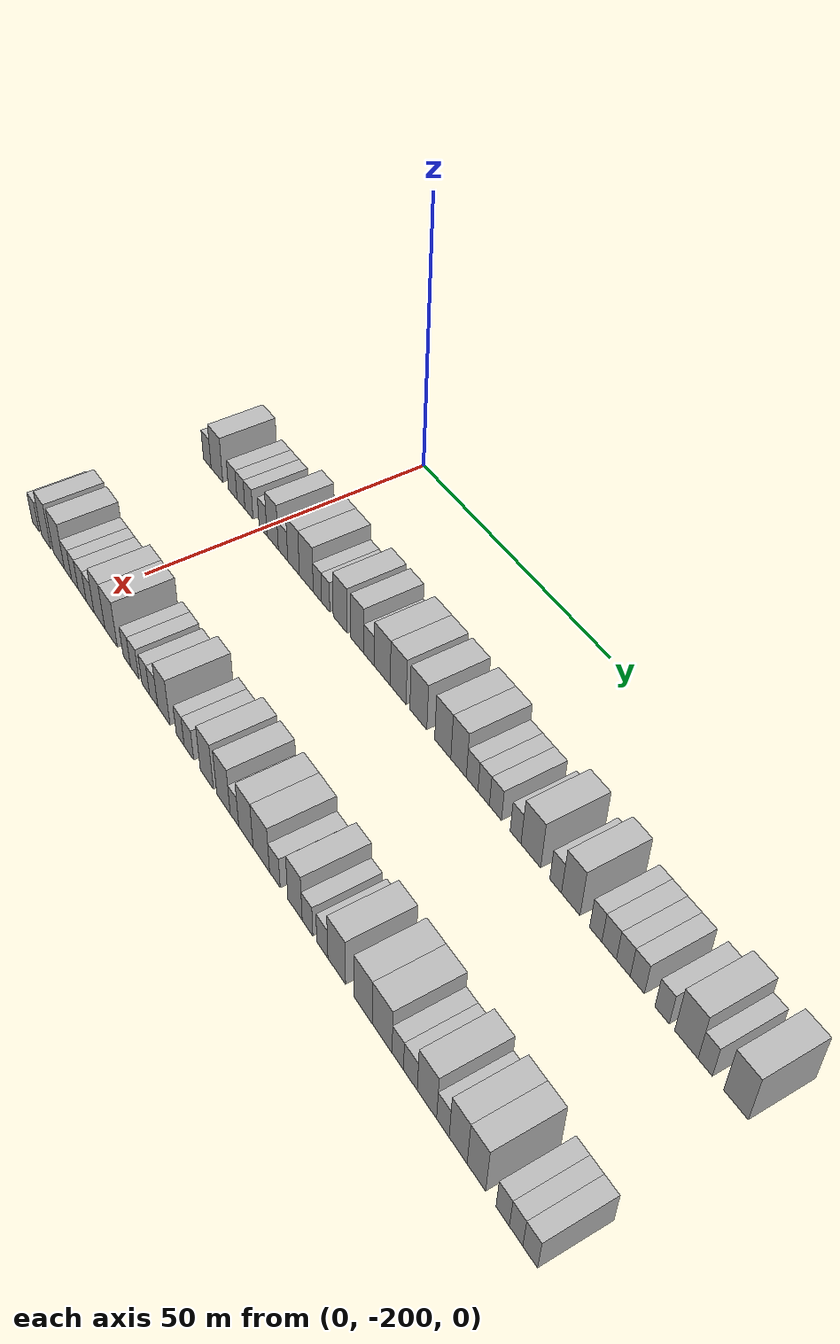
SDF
<sdf version="1.6">
 <world name="default">
  <model name="building_1">
   <static>1</static>
   <pose>25.0000 -218.6373 0 0.000000 0.000000 0.000000</pose>
   <link name="link">
    <pose>0 0 3.00 0 0 0</pose>
    <collision name="collision"><geometry><box><size>10.0000 2.7254 6.0000</size></box></geometry></collision>
    <visual name="visual">
     <cast_shadows>0</cast_shadows>
     <geometry><box><size>10.0000 2.7254 6.0000</size></box></geometry>
     <material>
      <script>
       <uri>model://HANNAS_wall/materials/scripts</uri>
       <uri>model://HANNAS_wall/materials/textures</uri>
       <name>vrc/HANNAS_wall</name>
      </script>
     </material>
    </visual>
   </link>
  </model>
  <model name="building_2">
   <static>1</static>
   <pose>25.0000 -215.2229 0 0.000000 0.000000 0.000000</pose>
   <link name="link">
    <pose>0 0 4.50 0 0 0</pose>
    <collision name="collision"><geometry><box><size>10.0000 4.1034 9.0000</size></box></geometry></collision>
    <visual name="visual">
     <cast_shadows>0</cast_shadows>
     <geometry><box><size>10.0000 4.1034 9.0000</size></box></geometry>
     <material>
      <script>
       <uri>model://HANNAS_wall/materials/scripts</uri>
       <uri>model://HANNAS_wall/materials/textures</uri>
       <name>vrc/HANNAS_wall</name>
      </script>
     </material>
    </visual>
   </link>
  </model>
  <model name="building_3">
   <static>1</static>
   <pose>25.0000 -209.6990 0 0.000000 0.000000 0.000000</pose>
   <link name="link">
    <pose>0 0 3.00 0 0 0</pose>
    <collision name="collision"><geometry><box><size>10.0000 2.9444 6.0000</size></box></geometry></collision>
    <visual name="visual">
     <cast_shadows>0</cast_shadows>
     <geometry><box><size>10.0000 2.9444 6.0000</size></box></geometry>
     <material>
      <script>
       <uri>model://HANNAS_wall/materials/scripts</uri>
       <uri>model://HANNAS_wall/materials/textures</uri>
       <name>vrc/HANNAS_wall</name>
      </script>
     </material>
    </visual>
   </link>
  </model>
  <model name="building_4">
   <static>1</static>
   <pose>25.0000 -206.8797 0 0.000000 0.000000 0.000000</pose>
   <link name="link">
    <pose>0 0 3.00 0 0 0</pose>
    <collision name="collision"><geometry><box><size>10.0000 2.6942 6.0000</size></box></geometry></collision>
    <visual name="visual">
     <cast_shadows>0</cast_shadows>
     <geometry><box><size>10.0000 2.6942 6.0000</size></box></geometry>
     <material>
      <script>
       <uri>model://HANNAS_wall/materials/scripts</uri>
       <uri>model://HANNAS_wall/materials/textures</uri>
       <name>vrc/HANNAS_wall</name>
      </script>
     </material>
    </visual>
   </link>
  </model>
  <model name="building_5">
   <static>1</static>
   <pose>25.0000 -204.1767 0 0.000000 0.000000 0.000000</pose>
   <link name="link">
    <pose>0 0 3.00 0 0 0</pose>
    <collision name="collision"><geometry><box><size>10.0000 2.7119 6.0000</size></box></geometry></collision>
    <visual name="visual">
     <cast_shadows>0</cast_shadows>
     <geometry><box><size>10.0000 2.7119 6.0000</size></box></geometry>
     <material>
      <script>
       <uri>model://HANNAS_wall/materials/scripts</uri>
       <uri>model://HANNAS_wall/materials/textures</uri>
       <name>vrc/HANNAS_wall</name>
      </script>
     </material>
    </visual>
   </link>
  </model>
  <model name="building_6">
   <static>1</static>
   <pose>25.0000 -199.5286 0 0.000000 0.000000 0.000000</pose>
   <link name="link">
    <pose>0 0 3.00 0 0 0</pose>
    <collision name="collision"><geometry><box><size>10.0000 2.5842 6.0000</size></box></geometry></collision>
    <visual name="visual">
     <cast_shadows>0</cast_shadows>
     <geometry><box><size>10.0000 2.5842 6.0000</size></box></geometry>
     <material>
      <script>
       <uri>model://HANNAS_wall/materials/scripts</uri>
       <uri>model://HANNAS_wall/materials/textures</uri>
       <name>vrc/HANNAS_wall</name>
      </script>
     </material>
    </visual>
   </link>
  </model>
  <model name="building_7">
   <static>1</static>
   <pose>25.0000 -196.3921 0 0.000000 0.000000 0.000000</pose>
   <link name="link">
    <pose>0 0 4.50 0 0 0</pose>
    <collision name="collision"><geometry><box><size>10.0000 3.6888 9.0000</size></box></geometry></collision>
    <visual name="visual">
     <cast_shadows>0</cast_shadows>
     <geometry><box><size>10.0000 3.6888 9.0000</size></box></geometry>
     <material>
      <script>
       <uri>model://HANNAS_wall/materials/scripts</uri>
       <uri>model://HANNAS_wall/materials/textures</uri>
       <name>vrc/HANNAS_wall</name>
      </script>
     </material>
    </visual>
   </link>
  </model>
  <model name="building_8">
   <static>1</static>
   <pose>25.0000 -193.0513 0 0.000000 0.000000 0.000000</pose>
   <link name="link">
    <pose>0 0 3.00 0 0 0</pose>
    <collision name="collision"><geometry><box><size>10.0000 2.9928 6.0000</size></box></geometry></collision>
    <visual name="visual">
     <cast_shadows>0</cast_shadows>
     <geometry><box><size>10.0000 2.9928 6.0000</size></box></geometry>
     <material>
      <script>
       <uri>model://HANNAS_wall/materials/scripts</uri>
       <uri>model://HANNAS_wall/materials/textures</uri>
       <name>vrc/HANNAS_wall</name>
      </script>
     </material>
    </visual>
   </link>
  </model>
  <model name="building_9">
   <static>1</static>
   <pose>25.0000 -189.7349 0 0.000000 0.000000 0.000000</pose>
   <link name="link">
    <pose>0 0 4.50 0 0 0</pose>
    <collision name="collision"><geometry><box><size>10.0000 3.6400 9.0000</size></box></geometry></collision>
    <visual name="visual">
     <cast_shadows>0</cast_shadows>
     <geometry><box><size>10.0000 3.6400 9.0000</size></box></geometry>
     <material>
      <script>
       <uri>model://HANNAS_wall/materials/scripts</uri>
       <uri>model://HANNAS_wall/materials/textures</uri>
       <name>vrc/HANNAS_wall</name>
      </script>
     </material>
    </visual>
   </link>
  </model>
  <model name="building_10">
   <static>1</static>
   <pose>25.0000 -185.7812 0 0.000000 0.000000 0.000000</pose>
   <link name="link">
    <pose>0 0 4.50 0 0 0</pose>
    <collision name="collision"><geometry><box><size>10.0000 4.2674 9.0000</size></box></geometry></collision>
    <visual name="visual">
     <cast_shadows>0</cast_shadows>
     <geometry><box><size>10.0000 4.2674 9.0000</size></box></geometry>
     <material>
      <script>
       <uri>model://HANNAS_wall/materials/scripts</uri>
       <uri>model://HANNAS_wall/materials/textures</uri>
       <name>vrc/HANNAS_wall</name>
      </script>
     </material>
    </visual>
   </link>
  </model>
  <model name="building_11">
   <static>1</static>
   <pose>25.0000 -182.3997 0 0.000000 0.000000 0.000000</pose>
   <link name="link">
    <pose>0 0 3.00 0 0 0</pose>
    <collision name="collision"><geometry><box><size>10.0000 2.4958 6.0000</size></box></geometry></collision>
    <visual name="visual">
     <cast_shadows>0</cast_shadows>
     <geometry><box><size>10.0000 2.4958 6.0000</size></box></geometry>
     <material>
      <script>
       <uri>model://HANNAS_wall/materials/scripts</uri>
       <uri>model://HANNAS_wall/materials/textures</uri>
       <name>vrc/HANNAS_wall</name>
      </script>
     </material>
    </visual>
   </link>
  </model>
  <model name="building_12">
   <static>1</static>
   <pose>25.0000 -179.9335 0 0.000000 0.000000 0.000000</pose>
   <link name="link">
    <pose>0 0 3.00 0 0 0</pose>
    <collision name="collision"><geometry><box><size>10.0000 2.4366 6.0000</size></box></geometry></collision>
    <visual name="visual">
     <cast_shadows>0</cast_shadows>
     <geometry><box><size>10.0000 2.4366 6.0000</size></box></geometry>
     <material>
      <script>
       <uri>model://HANNAS_wall/materials/scripts</uri>
       <uri>model://HANNAS_wall/materials/textures</uri>
       <name>vrc/HANNAS_wall</name>
      </script>
     </material>
    </visual>
   </link>
  </model>
  <model name="building_13">
   <static>1</static>
   <pose>25.0000 -175.6765 0 0.000000 0.000000 0.000000</pose>
   <link name="link">
    <pose>0 0 4.50 0 0 0</pose>
    <collision name="collision"><geometry><box><size>10.0000 4.0773 9.0000</size></box></geometry></collision>
    <visual name="visual">
     <cast_shadows>0</cast_shadows>
     <geometry><box><size>10.0000 4.0773 9.0000</size></box></geometry>
     <material>
      <script>
       <uri>model://HANNAS_wall/materials/scripts</uri>
       <uri>model://HANNAS_wall/materials/textures</uri>
       <name>vrc/HANNAS_wall</name>
      </script>
     </material>
    </visual>
   </link>
  </model>
  <model name="building_14">
   <static>1</static>
   <pose>25.0000 -170.7742 0 0.000000 0.000000 0.000000</pose>
   <link name="link">
    <pose>0 0 4.50 0 0 0</pose>
    <collision name="collision"><geometry><box><size>10.0000 3.7273 9.0000</size></box></geometry></collision>
    <visual name="visual">
     <cast_shadows>0</cast_shadows>
     <geometry><box><size>10.0000 3.7273 9.0000</size></box></geometry>
     <material>
      <script>
       <uri>model://HANNAS_wall/materials/scripts</uri>
       <uri>model://HANNAS_wall/materials/textures</uri>
       <name>vrc/HANNAS_wall</name>
      </script>
     </material>
    </visual>
   </link>
  </model>
  <model name="building_15">
   <static>1</static>
   <pose>25.0000 -167.4381 0 0.000000 0.000000 0.000000</pose>
   <link name="link">
    <pose>0 0 3.00 0 0 0</pose>
    <collision name="collision"><geometry><box><size>10.0000 2.9449 6.0000</size></box></geometry></collision>
    <visual name="visual">
     <cast_shadows>0</cast_shadows>
     <geometry><box><size>10.0000 2.9449 6.0000</size></box></geometry>
     <material>
      <script>
       <uri>model://HANNAS_wall/materials/scripts</uri>
       <uri>model://HANNAS_wall/materials/textures</uri>
       <name>vrc/HANNAS_wall</name>
      </script>
     </material>
    </visual>
   </link>
  </model>
  <model name="building_16">
   <static>1</static>
   <pose>25.0000 -163.7982 0 0.000000 0.000000 0.000000</pose>
   <link name="link">
    <pose>0 0 4.50 0 0 0</pose>
    <collision name="collision"><geometry><box><size>10.0000 4.3349 9.0000</size></box></geometry></collision>
    <visual name="visual">
     <cast_shadows>0</cast_shadows>
     <geometry><box><size>10.0000 4.3349 9.0000</size></box></geometry>
     <material>
      <script>
       <uri>model://HANNAS_wall/materials/scripts</uri>
       <uri>model://HANNAS_wall/materials/textures</uri>
       <name>vrc/HANNAS_wall</name>
      </script>
     </material>
    </visual>
   </link>
  </model>
  <model name="building_17">
   <static>1</static>
   <pose>25.0000 -159.5141 0 0.000000 0.000000 0.000000</pose>
   <link name="link">
    <pose>0 0 4.50 0 0 0</pose>
    <collision name="collision"><geometry><box><size>10.0000 4.2334 9.0000</size></box></geometry></collision>
    <visual name="visual">
     <cast_shadows>0</cast_shadows>
     <geometry><box><size>10.0000 4.2334 9.0000</size></box></geometry>
     <material>
      <script>
       <uri>model://HANNAS_wall/materials/scripts</uri>
       <uri>model://HANNAS_wall/materials/textures</uri>
       <name>vrc/HANNAS_wall</name>
      </script>
     </material>
    </visual>
   </link>
  </model>
  <model name="building_18">
   <static>1</static>
   <pose>25.0000 -154.1911 0 0.000000 0.000000 0.000000</pose>
   <link name="link">
    <pose>0 0 4.50 0 0 0</pose>
    <collision name="collision"><geometry><box><size>10.0000 4.4124 9.0000</size></box></geometry></collision>
    <visual name="visual">
     <cast_shadows>0</cast_shadows>
     <geometry><box><size>10.0000 4.4124 9.0000</size></box></geometry>
     <material>
      <script>
       <uri>model://HANNAS_wall/materials/scripts</uri>
       <uri>model://HANNAS_wall/materials/textures</uri>
       <name>vrc/HANNAS_wall</name>
      </script>
     </material>
    </visual>
   </link>
  </model>
  <model name="building_19">
   <static>1</static>
   <pose>25.0000 -147.9562 0 0.000000 0.000000 0.000000</pose>
   <link name="link">
    <pose>0 0 4.50 0 0 0</pose>
    <collision name="collision"><geometry><box><size>10.0000 4.0575 9.0000</size></box></geometry></collision>
    <visual name="visual">
     <cast_shadows>0</cast_shadows>
     <geometry><box><size>10.0000 4.0575 9.0000</size></box></geometry>
     <material>
      <script>
       <uri>model://HANNAS_wall/materials/scripts</uri>
       <uri>model://HANNAS_wall/materials/textures</uri>
       <name>vrc/HANNAS_wall</name>
      </script>
     </material>
    </visual>
   </link>
  </model>
  <model name="building_20">
   <static>1</static>
   <pose>25.0000 -144.0206 0 0.000000 0.000000 0.000000</pose>
   <link name="link">
    <pose>0 0 4.50 0 0 0</pose>
    <collision name="collision"><geometry><box><size>10.0000 3.8136 9.0000</size></box></geometry></collision>
    <visual name="visual">
     <cast_shadows>0</cast_shadows>
     <geometry><box><size>10.0000 3.8136 9.0000</size></box></geometry>
     <material>
      <script>
       <uri>model://HANNAS_wall/materials/scripts</uri>
       <uri>model://HANNAS_wall/materials/textures</uri>
       <name>vrc/HANNAS_wall</name>
      </script>
     </material>
    </visual>
   </link>
  </model>
  <model name="building_21">
   <static>1</static>
   <pose>25.0000 -140.7175 0 0.000000 0.000000 0.000000</pose>
   <link name="link">
    <pose>0 0 3.00 0 0 0</pose>
    <collision name="collision"><geometry><box><size>10.0000 2.7927 6.0000</size></box></geometry></collision>
    <visual name="visual">
     <cast_shadows>0</cast_shadows>
     <geometry><box><size>10.0000 2.7927 6.0000</size></box></geometry>
     <material>
      <script>
       <uri>model://HANNAS_wall/materials/scripts</uri>
       <uri>model://HANNAS_wall/materials/textures</uri>
       <name>vrc/HANNAS_wall</name>
      </script>
     </material>
    </visual>
   </link>
  </model>
  <model name="building_22">
   <static>1</static>
   <pose>25.0000 -137.9594 0 0.000000 0.000000 0.000000</pose>
   <link name="link">
    <pose>0 0 3.00 0 0 0</pose>
    <collision name="collision"><geometry><box><size>10.0000 2.7236 6.0000</size></box></geometry></collision>
    <visual name="visual">
     <cast_shadows>0</cast_shadows>
     <geometry><box><size>10.0000 2.7236 6.0000</size></box></geometry>
     <material>
      <script>
       <uri>model://HANNAS_wall/materials/scripts</uri>
       <uri>model://HANNAS_wall/materials/textures</uri>
       <name>vrc/HANNAS_wall</name>
      </script>
     </material>
    </visual>
   </link>
  </model>
  <model name="building_23">
   <static>1</static>
   <pose>25.0000 -135.1824 0 0.000000 0.000000 0.000000</pose>
   <link name="link">
    <pose>0 0 3.00 0 0 0</pose>
    <collision name="collision"><geometry><box><size>10.0000 2.8303 6.0000</size></box></geometry></collision>
    <visual name="visual">
     <cast_shadows>0</cast_shadows>
     <geometry><box><size>10.0000 2.8303 6.0000</size></box></geometry>
     <material>
      <script>
       <uri>model://HANNAS_wall/materials/scripts</uri>
       <uri>model://HANNAS_wall/materials/textures</uri>
       <name>vrc/HANNAS_wall</name>
      </script>
     </material>
    </visual>
   </link>
  </model>
  <model name="building_24">
   <static>1</static>
   <pose>25.0000 -130.5386 0 0.000000 0.000000 0.000000</pose>
   <link name="link">
    <pose>0 0 3.00 0 0 0</pose>
    <collision name="collision"><geometry><box><size>10.0000 2.4573 6.0000</size></box></geometry></collision>
    <visual name="visual">
     <cast_shadows>0</cast_shadows>
     <geometry><box><size>10.0000 2.4573 6.0000</size></box></geometry>
     <material>
      <script>
       <uri>model://HANNAS_wall/materials/scripts</uri>
       <uri>model://HANNAS_wall/materials/textures</uri>
       <name>vrc/HANNAS_wall</name>
      </script>
     </material>
    </visual>
   </link>
  </model>
  <model name="building_25">
   <static>1</static>
   <pose>25.0000 -127.1164 0 0.000000 0.000000 0.000000</pose>
   <link name="link">
    <pose>0 0 4.50 0 0 0</pose>
    <collision name="collision"><geometry><box><size>10.0000 4.3872 9.0000</size></box></geometry></collision>
    <visual name="visual">
     <cast_shadows>0</cast_shadows>
     <geometry><box><size>10.0000 4.3872 9.0000</size></box></geometry>
     <material>
      <script>
       <uri>model://HANNAS_wall/materials/scripts</uri>
       <uri>model://HANNAS_wall/materials/textures</uri>
       <name>vrc/HANNAS_wall</name>
      </script>
     </material>
    </visual>
   </link>
  </model>
  <model name="building_26">
   <static>1</static>
   <pose>25.0000 -121.6655 0 0.000000 0.000000 0.000000</pose>
   <link name="link">
    <pose>0 0 3.00 0 0 0</pose>
    <collision name="collision"><geometry><box><size>10.0000 2.5145 6.0000</size></box></geometry></collision>
    <visual name="visual">
     <cast_shadows>0</cast_shadows>
     <geometry><box><size>10.0000 2.5145 6.0000</size></box></geometry>
     <material>
      <script>
       <uri>model://HANNAS_wall/materials/scripts</uri>
       <uri>model://HANNAS_wall/materials/textures</uri>
       <name>vrc/HANNAS_wall</name>
      </script>
     </material>
    </visual>
   </link>
  </model>
  <model name="building_27">
   <static>1</static>
   <pose>25.0000 -118.4431 0 0.000000 0.000000 0.000000</pose>
   <link name="link">
    <pose>0 0 4.50 0 0 0</pose>
    <collision name="collision"><geometry><box><size>10.0000 3.9304 9.0000</size></box></geometry></collision>
    <visual name="visual">
     <cast_shadows>0</cast_shadows>
     <geometry><box><size>10.0000 3.9304 9.0000</size></box></geometry>
     <material>
      <script>
       <uri>model://HANNAS_wall/materials/scripts</uri>
       <uri>model://HANNAS_wall/materials/textures</uri>
       <name>vrc/HANNAS_wall</name>
      </script>
     </material>
    </visual>
   </link>
  </model>
  <model name="building_28">
   <static>1</static>
   <pose>25.0000 -113.2305 0 0.000000 0.000000 0.000000</pose>
   <link name="link">
    <pose>0 0 3.00 0 0 0</pose>
    <collision name="collision"><geometry><box><size>10.0000 2.4947 6.0000</size></box></geometry></collision>
    <visual name="visual">
     <cast_shadows>0</cast_shadows>
     <geometry><box><size>10.0000 2.4947 6.0000</size></box></geometry>
     <material>
      <script>
       <uri>model://HANNAS_wall/materials/scripts</uri>
       <uri>model://HANNAS_wall/materials/textures</uri>
       <name>vrc/HANNAS_wall</name>
      </script>
     </material>
    </visual>
   </link>
  </model>
  <model name="building_29">
   <static>1</static>
   <pose>25.0000 -110.5142 0 0.000000 0.000000 0.000000</pose>
   <link name="link">
    <pose>0 0 3.00 0 0 0</pose>
    <collision name="collision"><geometry><box><size>10.0000 2.9378 6.0000</size></box></geometry></collision>
    <visual name="visual">
     <cast_shadows>0</cast_shadows>
     <geometry><box><size>10.0000 2.9378 6.0000</size></box></geometry>
     <material>
      <script>
       <uri>model://HANNAS_wall/materials/scripts</uri>
       <uri>model://HANNAS_wall/materials/textures</uri>
       <name>vrc/HANNAS_wall</name>
      </script>
     </material>
    </visual>
   </link>
  </model>
  <model name="building_30">
   <static>1</static>
   <pose>25.0000 -107.6728 0 0.000000 0.000000 0.000000</pose>
   <link name="link">
    <pose>0 0 3.00 0 0 0</pose>
    <collision name="collision"><geometry><box><size>10.0000 2.7450 6.0000</size></box></geometry></collision>
    <visual name="visual">
     <cast_shadows>0</cast_shadows>
     <geometry><box><size>10.0000 2.7450 6.0000</size></box></geometry>
     <material>
      <script>
       <uri>model://HANNAS_wall/materials/scripts</uri>
       <uri>model://HANNAS_wall/materials/textures</uri>
       <name>vrc/HANNAS_wall</name>
      </script>
     </material>
    </visual>
   </link>
  </model>
  <model name="building_31">
   <static>1</static>
   <pose>25.0000 -104.9131 0 0.000000 0.000000 0.000000</pose>
   <link name="link">
    <pose>0 0 3.00 0 0 0</pose>
    <collision name="collision"><geometry><box><size>10.0000 2.7745 6.0000</size></box></geometry></collision>
    <visual name="visual">
     <cast_shadows>0</cast_shadows>
     <geometry><box><size>10.0000 2.7745 6.0000</size></box></geometry>
     <material>
      <script>
       <uri>model://HANNAS_wall/materials/scripts</uri>
       <uri>model://HANNAS_wall/materials/textures</uri>
       <name>vrc/HANNAS_wall</name>
      </script>
     </material>
    </visual>
   </link>
  </model>
  <model name="building_32">
   <static>1</static>
   <pose>25.0000 -100.1636 0 0.000000 0.000000 0.000000</pose>
   <link name="link">
    <pose>0 0 3.00 0 0 0</pose>
    <collision name="collision"><geometry><box><size>10.0000 2.7245 6.0000</size></box></geometry></collision>
    <visual name="visual">
     <cast_shadows>0</cast_shadows>
     <geometry><box><size>10.0000 2.7245 6.0000</size></box></geometry>
     <material>
      <script>
       <uri>model://HANNAS_wall/materials/scripts</uri>
       <uri>model://HANNAS_wall/materials/textures</uri>
       <name>vrc/HANNAS_wall</name>
      </script>
     </material>
    </visual>
   </link>
  </model>
  <model name="building_33">
   <static>1</static>
   <pose>25.0000 -95.6585 0 0.000000 0.000000 0.000000</pose>
   <link name="link">
    <pose>0 0 4.50 0 0 0</pose>
    <collision name="collision"><geometry><box><size>10.0000 4.2858 9.0000</size></box></geometry></collision>
    <visual name="visual">
     <cast_shadows>0</cast_shadows>
     <geometry><box><size>10.0000 4.2858 9.0000</size></box></geometry>
     <material>
      <script>
       <uri>model://HANNAS_wall/materials/scripts</uri>
       <uri>model://HANNAS_wall/materials/textures</uri>
       <name>vrc/HANNAS_wall</name>
      </script>
     </material>
    </visual>
   </link>
  </model>
  <model name="building_34">
   <static>1</static>
   <pose>25.0000 -92.2203 0 0.000000 0.000000 0.000000</pose>
   <link name="link">
    <pose>0 0 3.00 0 0 0</pose>
    <collision name="collision"><geometry><box><size>10.0000 2.5905 6.0000</size></box></geometry></collision>
    <visual name="visual">
     <cast_shadows>0</cast_shadows>
     <geometry><box><size>10.0000 2.5905 6.0000</size></box></geometry>
     <material>
      <script>
       <uri>model://HANNAS_wall/materials/scripts</uri>
       <uri>model://HANNAS_wall/materials/textures</uri>
       <name>vrc/HANNAS_wall</name>
      </script>
     </material>
    </visual>
   </link>
  </model>
  <model name="building_35">
   <static>1</static>
   <pose>25.0000 -86.7971 0 0.000000 0.000000 0.000000</pose>
   <link name="link">
    <pose>0 0 4.50 0 0 0</pose>
    <collision name="collision"><geometry><box><size>10.0000 4.2560 9.0000</size></box></geometry></collision>
    <visual name="visual">
     <cast_shadows>0</cast_shadows>
     <geometry><box><size>10.0000 4.2560 9.0000</size></box></geometry>
     <material>
      <script>
       <uri>model://HANNAS_wall/materials/scripts</uri>
       <uri>model://HANNAS_wall/materials/textures</uri>
       <name>vrc/HANNAS_wall</name>
      </script>
     </material>
    </visual>
   </link>
  </model>
  <model name="building_105">
   <static>1</static>
   <pose>55.0000 -218.6425 0 0.000000 0.000000 0.000000</pose>
   <link name="link">
    <pose>0 0 3.00 0 0 0</pose>
    <collision name="collision"><geometry><box><size>10.0000 2.7149 6.0000</size></box></geometry></collision>
    <visual name="visual">
     <cast_shadows>0</cast_shadows>
     <geometry><box><size>10.0000 2.7149 6.0000</size></box></geometry>
     <material>
      <script>
       <uri>model://HANNAS_wall/materials/scripts</uri>
       <uri>model://HANNAS_wall/materials/textures</uri>
       <name>vrc/HANNAS_wall</name>
      </script>
     </material>
    </visual>
   </link>
  </model>
  <model name="building_106">
   <static>1</static>
   <pose>55.0000 -214.4703 0 0.000000 0.000000 0.000000</pose>
   <link name="link">
    <pose>0 0 4.50 0 0 0</pose>
    <collision name="collision"><geometry><box><size>10.0000 3.6296 9.0000</size></box></geometry></collision>
    <visual name="visual">
     <cast_shadows>0</cast_shadows>
     <geometry><box><size>10.0000 3.6296 9.0000</size></box></geometry>
     <material>
      <script>
       <uri>model://HANNAS_wall/materials/scripts</uri>
       <uri>model://HANNAS_wall/materials/textures</uri>
       <name>vrc/HANNAS_wall</name>
      </script>
     </material>
    </visual>
   </link>
  </model>
  <model name="building_107">
   <static>1</static>
   <pose>55.0000 -209.5375 0 0.000000 0.000000 0.000000</pose>
   <link name="link">
    <pose>0 0 4.50 0 0 0</pose>
    <collision name="collision"><geometry><box><size>10.0000 4.2360 9.0000</size></box></geometry></collision>
    <visual name="visual">
     <cast_shadows>0</cast_shadows>
     <geometry><box><size>10.0000 4.2360 9.0000</size></box></geometry>
     <material>
      <script>
       <uri>model://HANNAS_wall/materials/scripts</uri>
       <uri>model://HANNAS_wall/materials/textures</uri>
       <name>vrc/HANNAS_wall</name>
      </script>
     </material>
    </visual>
   </link>
  </model>
  <model name="building_108">
   <static>1</static>
   <pose>55.0000 -206.0520 0 0.000000 0.000000 0.000000</pose>
   <link name="link">
    <pose>0 0 3.00 0 0 0</pose>
    <collision name="collision"><geometry><box><size>10.0000 2.7350 6.0000</size></box></geometry></collision>
    <visual name="visual">
     <cast_shadows>0</cast_shadows>
     <geometry><box><size>10.0000 2.7350 6.0000</size></box></geometry>
     <material>
      <script>
       <uri>model://HANNAS_wall/materials/scripts</uri>
       <uri>model://HANNAS_wall/materials/textures</uri>
       <name>vrc/HANNAS_wall</name>
      </script>
     </material>
    </visual>
   </link>
  </model>
  <model name="building_109">
   <static>1</static>
   <pose>55.0000 -203.4669 0 0.000000 0.000000 0.000000</pose>
   <link name="link">
    <pose>0 0 3.00 0 0 0</pose>
    <collision name="collision"><geometry><box><size>10.0000 2.4352 6.0000</size></box></geometry></collision>
    <visual name="visual">
     <cast_shadows>0</cast_shadows>
     <geometry><box><size>10.0000 2.4352 6.0000</size></box></geometry>
     <material>
      <script>
       <uri>model://HANNAS_wall/materials/scripts</uri>
       <uri>model://HANNAS_wall/materials/textures</uri>
       <name>vrc/HANNAS_wall</name>
      </script>
     </material>
    </visual>
   </link>
  </model>
  <model name="building_110">
   <static>1</static>
   <pose>55.0000 -200.7669 0 0.000000 0.000000 0.000000</pose>
   <link name="link">
    <pose>0 0 3.00 0 0 0</pose>
    <collision name="collision"><geometry><box><size>10.0000 2.9647 6.0000</size></box></geometry></collision>
    <visual name="visual">
     <cast_shadows>0</cast_shadows>
     <geometry><box><size>10.0000 2.9647 6.0000</size></box></geometry>
     <material>
      <script>
       <uri>model://HANNAS_wall/materials/scripts</uri>
       <uri>model://HANNAS_wall/materials/textures</uri>
       <name>vrc/HANNAS_wall</name>
      </script>
     </material>
    </visual>
   </link>
  </model>
  <model name="building_111">
   <static>1</static>
   <pose>55.0000 -197.8575 0 0.000000 0.000000 0.000000</pose>
   <link name="link">
    <pose>0 0 3.00 0 0 0</pose>
    <collision name="collision"><geometry><box><size>10.0000 2.8541 6.0000</size></box></geometry></collision>
    <visual name="visual">
     <cast_shadows>0</cast_shadows>
     <geometry><box><size>10.0000 2.8541 6.0000</size></box></geometry>
     <material>
      <script>
       <uri>model://HANNAS_wall/materials/scripts</uri>
       <uri>model://HANNAS_wall/materials/textures</uri>
       <name>vrc/HANNAS_wall</name>
      </script>
     </material>
    </visual>
   </link>
  </model>
  <model name="building_112">
   <static>1</static>
   <pose>55.0000 -194.5012 0 0.000000 0.000000 0.000000</pose>
   <link name="link">
    <pose>0 0 4.50 0 0 0</pose>
    <collision name="collision"><geometry><box><size>10.0000 3.8585 9.0000</size></box></geometry></collision>
    <visual name="visual">
     <cast_shadows>0</cast_shadows>
     <geometry><box><size>10.0000 3.8585 9.0000</size></box></geometry>
     <material>
      <script>
       <uri>model://HANNAS_wall/materials/scripts</uri>
       <uri>model://HANNAS_wall/materials/textures</uri>
       <name>vrc/HANNAS_wall</name>
      </script>
     </material>
    </visual>
   </link>
  </model>
  <model name="building_113">
   <static>1</static>
   <pose>55.0000 -190.3892 0 0.000000 0.000000 0.000000</pose>
   <link name="link">
    <pose>0 0 4.50 0 0 0</pose>
    <collision name="collision"><geometry><box><size>10.0000 4.3655 9.0000</size></box></geometry></collision>
    <visual name="visual">
     <cast_shadows>0</cast_shadows>
     <geometry><box><size>10.0000 4.3655 9.0000</size></box></geometry>
     <material>
      <script>
       <uri>model://HANNAS_wall/materials/scripts</uri>
       <uri>model://HANNAS_wall/materials/textures</uri>
       <name>vrc/HANNAS_wall</name>
      </script>
     </material>
    </visual>
   </link>
  </model>
  <model name="building_114">
   <static>1</static>
   <pose>55.0000 -184.9822 0 0.000000 0.000000 0.000000</pose>
   <link name="link">
    <pose>0 0 3.00 0 0 0</pose>
    <collision name="collision"><geometry><box><size>10.0000 2.4485 6.0000</size></box></geometry></collision>
    <visual name="visual">
     <cast_shadows>0</cast_shadows>
     <geometry><box><size>10.0000 2.4485 6.0000</size></box></geometry>
     <material>
      <script>
       <uri>model://HANNAS_wall/materials/scripts</uri>
       <uri>model://HANNAS_wall/materials/textures</uri>
       <name>vrc/HANNAS_wall</name>
      </script>
     </material>
    </visual>
   </link>
  </model>
  <model name="building_115">
   <static>1</static>
   <pose>55.0000 -182.3492 0 0.000000 0.000000 0.000000</pose>
   <link name="link">
    <pose>0 0 3.00 0 0 0</pose>
    <collision name="collision"><geometry><box><size>10.0000 2.8175 6.0000</size></box></geometry></collision>
    <visual name="visual">
     <cast_shadows>0</cast_shadows>
     <geometry><box><size>10.0000 2.8175 6.0000</size></box></geometry>
     <material>
      <script>
       <uri>model://HANNAS_wall/materials/scripts</uri>
       <uri>model://HANNAS_wall/materials/textures</uri>
       <name>vrc/HANNAS_wall</name>
      </script>
     </material>
    </visual>
   </link>
  </model>
  <model name="building_116">
   <static>1</static>
   <pose>55.0000 -178.6805 0 0.000000 0.000000 0.000000</pose>
   <link name="link">
    <pose>0 0 3.00 0 0 0</pose>
    <collision name="collision"><geometry><box><size>10.0000 2.5200 6.0000</size></box></geometry></collision>
    <visual name="visual">
     <cast_shadows>0</cast_shadows>
     <geometry><box><size>10.0000 2.5200 6.0000</size></box></geometry>
     <material>
      <script>
       <uri>model://HANNAS_wall/materials/scripts</uri>
       <uri>model://HANNAS_wall/materials/textures</uri>
       <name>vrc/HANNAS_wall</name>
      </script>
     </material>
    </visual>
   </link>
  </model>
  <model name="building_117">
   <static>1</static>
   <pose>55.0000 -176.0759 0 0.000000 0.000000 0.000000</pose>
   <link name="link">
    <pose>0 0 3.00 0 0 0</pose>
    <collision name="collision"><geometry><box><size>10.0000 2.6890 6.0000</size></box></geometry></collision>
    <visual name="visual">
     <cast_shadows>0</cast_shadows>
     <geometry><box><size>10.0000 2.6890 6.0000</size></box></geometry>
     <material>
      <script>
       <uri>model://HANNAS_wall/materials/scripts</uri>
       <uri>model://HANNAS_wall/materials/textures</uri>
       <name>vrc/HANNAS_wall</name>
      </script>
     </material>
    </visual>
   </link>
  </model>
  <model name="building_118">
   <static>1</static>
   <pose>55.0000 -172.8120 0 0.000000 0.000000 0.000000</pose>
   <link name="link">
    <pose>0 0 4.50 0 0 0</pose>
    <collision name="collision"><geometry><box><size>10.0000 3.8389 9.0000</size></box></geometry></collision>
    <visual name="visual">
     <cast_shadows>0</cast_shadows>
     <geometry><box><size>10.0000 3.8389 9.0000</size></box></geometry>
     <material>
      <script>
       <uri>model://HANNAS_wall/materials/scripts</uri>
       <uri>model://HANNAS_wall/materials/textures</uri>
       <name>vrc/HANNAS_wall</name>
      </script>
     </material>
    </visual>
   </link>
  </model>
  <model name="building_119">
   <static>1</static>
   <pose>55.0000 -167.6865 0 0.000000 0.000000 0.000000</pose>
   <link name="link">
    <pose>0 0 3.00 0 0 0</pose>
    <collision name="collision"><geometry><box><size>10.0000 2.4120 6.0000</size></box></geometry></collision>
    <visual name="visual">
     <cast_shadows>0</cast_shadows>
     <geometry><box><size>10.0000 2.4120 6.0000</size></box></geometry>
     <material>
      <script>
       <uri>model://HANNAS_wall/materials/scripts</uri>
       <uri>model://HANNAS_wall/materials/textures</uri>
       <name>vrc/HANNAS_wall</name>
      </script>
     </material>
    </visual>
   </link>
  </model>
  <model name="building_120">
   <static>1</static>
   <pose>55.0000 -165.0368 0 0.000000 0.000000 0.000000</pose>
   <link name="link">
    <pose>0 0 3.00 0 0 0</pose>
    <collision name="collision"><geometry><box><size>10.0000 2.8874 6.0000</size></box></geometry></collision>
    <visual name="visual">
     <cast_shadows>0</cast_shadows>
     <geometry><box><size>10.0000 2.8874 6.0000</size></box></geometry>
     <material>
      <script>
       <uri>model://HANNAS_wall/materials/scripts</uri>
       <uri>model://HANNAS_wall/materials/textures</uri>
       <name>vrc/HANNAS_wall</name>
      </script>
     </material>
    </visual>
   </link>
  </model>
  <model name="building_121">
   <static>1</static>
   <pose>55.0000 -159.6629 0 0.000000 0.000000 0.000000</pose>
   <link name="link">
    <pose>0 0 4.50 0 0 0</pose>
    <collision name="collision"><geometry><box><size>10.0000 3.8603 9.0000</size></box></geometry></collision>
    <visual name="visual">
     <cast_shadows>0</cast_shadows>
     <geometry><box><size>10.0000 3.8603 9.0000</size></box></geometry>
     <material>
      <script>
       <uri>model://HANNAS_wall/materials/scripts</uri>
       <uri>model://HANNAS_wall/materials/textures</uri>
       <name>vrc/HANNAS_wall</name>
      </script>
     </material>
    </visual>
   </link>
  </model>
  <model name="building_122">
   <static>1</static>
   <pose>55.0000 -154.8069 0 0.000000 0.000000 0.000000</pose>
   <link name="link">
    <pose>0 0 4.50 0 0 0</pose>
    <collision name="collision"><geometry><box><size>10.0000 3.8517 9.0000</size></box></geometry></collision>
    <visual name="visual">
     <cast_shadows>0</cast_shadows>
     <geometry><box><size>10.0000 3.8517 9.0000</size></box></geometry>
     <material>
      <script>
       <uri>model://HANNAS_wall/materials/scripts</uri>
       <uri>model://HANNAS_wall/materials/textures</uri>
       <name>vrc/HANNAS_wall</name>
      </script>
     </material>
    </visual>
   </link>
  </model>
  <model name="building_123">
   <static>1</static>
   <pose>55.0000 -151.6798 0 0.000000 0.000000 0.000000</pose>
   <link name="link">
    <pose>0 0 3.00 0 0 0</pose>
    <collision name="collision"><geometry><box><size>10.0000 2.4026 6.0000</size></box></geometry></collision>
    <visual name="visual">
     <cast_shadows>0</cast_shadows>
     <geometry><box><size>10.0000 2.4026 6.0000</size></box></geometry>
     <material>
      <script>
       <uri>model://HANNAS_wall/materials/scripts</uri>
       <uri>model://HANNAS_wall/materials/textures</uri>
       <name>vrc/HANNAS_wall</name>
      </script>
     </material>
    </visual>
   </link>
  </model>
  <model name="building_124">
   <static>1</static>
   <pose>55.0000 -148.4894 0 0.000000 0.000000 0.000000</pose>
   <link name="link">
    <pose>0 0 4.50 0 0 0</pose>
    <collision name="collision"><geometry><box><size>10.0000 3.9782 9.0000</size></box></geometry></collision>
    <visual name="visual">
     <cast_shadows>0</cast_shadows>
     <geometry><box><size>10.0000 3.9782 9.0000</size></box></geometry>
     <material>
      <script>
       <uri>model://HANNAS_wall/materials/scripts</uri>
       <uri>model://HANNAS_wall/materials/textures</uri>
       <name>vrc/HANNAS_wall</name>
      </script>
     </material>
    </visual>
   </link>
  </model>
  <model name="building_125">
   <static>1</static>
   <pose>55.0000 -144.2872 0 0.000000 0.000000 0.000000</pose>
   <link name="link">
    <pose>0 0 4.50 0 0 0</pose>
    <collision name="collision"><geometry><box><size>10.0000 4.4262 9.0000</size></box></geometry></collision>
    <visual name="visual">
     <cast_shadows>0</cast_shadows>
     <geometry><box><size>10.0000 4.4262 9.0000</size></box></geometry>
     <material>
      <script>
       <uri>model://HANNAS_wall/materials/scripts</uri>
       <uri>model://HANNAS_wall/materials/textures</uri>
       <name>vrc/HANNAS_wall</name>
      </script>
     </material>
    </visual>
   </link>
  </model>
  <model name="building_126">
   <static>1</static>
   <pose>55.0000 -140.6618 0 0.000000 0.000000 0.000000</pose>
   <link name="link">
    <pose>0 0 3.00 0 0 0</pose>
    <collision name="collision"><geometry><box><size>10.0000 2.8247 6.0000</size></box></geometry></collision>
    <visual name="visual">
     <cast_shadows>0</cast_shadows>
     <geometry><box><size>10.0000 2.8247 6.0000</size></box></geometry>
     <material>
      <script>
       <uri>model://HANNAS_wall/materials/scripts</uri>
       <uri>model://HANNAS_wall/materials/textures</uri>
       <name>vrc/HANNAS_wall</name>
      </script>
     </material>
    </visual>
   </link>
  </model>
  <model name="building_127">
   <static>1</static>
   <pose>55.0000 -135.4095 0 0.000000 0.000000 0.000000</pose>
   <link name="link">
    <pose>0 0 4.50 0 0 0</pose>
    <collision name="collision"><geometry><box><size>10.0000 3.6800 9.0000</size></box></geometry></collision>
    <visual name="visual">
     <cast_shadows>0</cast_shadows>
     <geometry><box><size>10.0000 3.6800 9.0000</size></box></geometry>
     <material>
      <script>
       <uri>model://HANNAS_wall/materials/scripts</uri>
       <uri>model://HANNAS_wall/materials/textures</uri>
       <name>vrc/HANNAS_wall</name>
      </script>
     </material>
    </visual>
   </link>
  </model>
  <model name="building_128">
   <static>1</static>
   <pose>55.0000 -132.2395 0 0.000000 0.000000 0.000000</pose>
   <link name="link">
    <pose>0 0 3.00 0 0 0</pose>
    <collision name="collision"><geometry><box><size>10.0000 2.6601 6.0000</size></box></geometry></collision>
    <visual name="visual">
     <cast_shadows>0</cast_shadows>
     <geometry><box><size>10.0000 2.6601 6.0000</size></box></geometry>
     <material>
      <script>
       <uri>model://HANNAS_wall/materials/scripts</uri>
       <uri>model://HANNAS_wall/materials/textures</uri>
       <name>vrc/HANNAS_wall</name>
      </script>
     </material>
    </visual>
   </link>
  </model>
  <model name="building_129">
   <static>1</static>
   <pose>55.0000 -128.5564 0 0.000000 0.000000 0.000000</pose>
   <link name="link">
    <pose>0 0 3.00 0 0 0</pose>
    <collision name="collision"><geometry><box><size>10.0000 2.7060 6.0000</size></box></geometry></collision>
    <visual name="visual">
     <cast_shadows>0</cast_shadows>
     <geometry><box><size>10.0000 2.7060 6.0000</size></box></geometry>
     <material>
      <script>
       <uri>model://HANNAS_wall/materials/scripts</uri>
       <uri>model://HANNAS_wall/materials/textures</uri>
       <name>vrc/HANNAS_wall</name>
      </script>
     </material>
    </visual>
   </link>
  </model>
  <model name="building_130">
   <static>1</static>
   <pose>55.0000 -125.0766 0 0.000000 0.000000 0.000000</pose>
   <link name="link">
    <pose>0 0 4.50 0 0 0</pose>
    <collision name="collision"><geometry><box><size>10.0000 4.2535 9.0000</size></box></geometry></collision>
    <visual name="visual">
     <cast_shadows>0</cast_shadows>
     <geometry><box><size>10.0000 4.2535 9.0000</size></box></geometry>
     <material>
      <script>
       <uri>model://HANNAS_wall/materials/scripts</uri>
       <uri>model://HANNAS_wall/materials/textures</uri>
       <name>vrc/HANNAS_wall</name>
      </script>
     </material>
    </visual>
   </link>
  </model>
  <model name="building_131">
   <static>1</static>
   <pose>55.0000 -118.8574 0 0.000000 0.000000 0.000000</pose>
   <link name="link">
    <pose>0 0 4.50 0 0 0</pose>
    <collision name="collision"><geometry><box><size>10.0000 4.1849 9.0000</size></box></geometry></collision>
    <visual name="visual">
     <cast_shadows>0</cast_shadows>
     <geometry><box><size>10.0000 4.1849 9.0000</size></box></geometry>
     <material>
      <script>
       <uri>model://HANNAS_wall/materials/scripts</uri>
       <uri>model://HANNAS_wall/materials/textures</uri>
       <name>vrc/HANNAS_wall</name>
      </script>
     </material>
    </visual>
   </link>
  </model>
  <model name="building_132">
   <static>1</static>
   <pose>55.0000 -114.5314 0 0.000000 0.000000 0.000000</pose>
   <link name="link">
    <pose>0 0 4.50 0 0 0</pose>
    <collision name="collision"><geometry><box><size>10.0000 4.4671 9.0000</size></box></geometry></collision>
    <visual name="visual">
     <cast_shadows>0</cast_shadows>
     <geometry><box><size>10.0000 4.4671 9.0000</size></box></geometry>
     <material>
      <script>
       <uri>model://HANNAS_wall/materials/scripts</uri>
       <uri>model://HANNAS_wall/materials/textures</uri>
       <name>vrc/HANNAS_wall</name>
      </script>
     </material>
    </visual>
   </link>
  </model>
  <model name="building_133">
   <static>1</static>
   <pose>55.0000 -111.0446 0 0.000000 0.000000 0.000000</pose>
   <link name="link">
    <pose>0 0 3.00 0 0 0</pose>
    <collision name="collision"><geometry><box><size>10.0000 2.5065 6.0000</size></box></geometry></collision>
    <visual name="visual">
     <cast_shadows>0</cast_shadows>
     <geometry><box><size>10.0000 2.5065 6.0000</size></box></geometry>
     <material>
      <script>
       <uri>model://HANNAS_wall/materials/scripts</uri>
       <uri>model://HANNAS_wall/materials/textures</uri>
       <name>vrc/HANNAS_wall</name>
      </script>
     </material>
    </visual>
   </link>
  </model>
  <model name="building_134">
   <static>1</static>
   <pose>55.0000 -108.2998 0 0.000000 0.000000 0.000000</pose>
   <link name="link">
    <pose>0 0 3.00 0 0 0</pose>
    <collision name="collision"><geometry><box><size>10.0000 2.9829 6.0000</size></box></geometry></collision>
    <visual name="visual">
     <cast_shadows>0</cast_shadows>
     <geometry><box><size>10.0000 2.9829 6.0000</size></box></geometry>
     <material>
      <script>
       <uri>model://HANNAS_wall/materials/scripts</uri>
       <uri>model://HANNAS_wall/materials/textures</uri>
       <name>vrc/HANNAS_wall</name>
      </script>
     </material>
    </visual>
   </link>
  </model>
  <model name="building_135">
   <static>1</static>
   <pose>55.0000 -104.7730 0 0.000000 0.000000 0.000000</pose>
   <link name="link">
    <pose>0 0 4.50 0 0 0</pose>
    <collision name="collision"><geometry><box><size>10.0000 4.0708 9.0000</size></box></geometry></collision>
    <visual name="visual">
     <cast_shadows>0</cast_shadows>
     <geometry><box><size>10.0000 4.0708 9.0000</size></box></geometry>
     <material>
      <script>
       <uri>model://HANNAS_wall/materials/scripts</uri>
       <uri>model://HANNAS_wall/materials/textures</uri>
       <name>vrc/HANNAS_wall</name>
      </script>
     </material>
    </visual>
   </link>
  </model>
  <model name="building_136">
   <static>1</static>
   <pose>55.0000 -101.4442 0 0.000000 0.000000 0.000000</pose>
   <link name="link">
    <pose>0 0 3.00 0 0 0</pose>
    <collision name="collision"><geometry><box><size>10.0000 2.5868 6.0000</size></box></geometry></collision>
    <visual name="visual">
     <cast_shadows>0</cast_shadows>
     <geometry><box><size>10.0000 2.5868 6.0000</size></box></geometry>
     <material>
      <script>
       <uri>model://HANNAS_wall/materials/scripts</uri>
       <uri>model://HANNAS_wall/materials/textures</uri>
       <name>vrc/HANNAS_wall</name>
      </script>
     </material>
    </visual>
   </link>
  </model>
  <model name="building_137">
   <static>1</static>
   <pose>55.0000 -98.3370 0 0.000000 0.000000 0.000000</pose>
   <link name="link">
    <pose>0 0 4.50 0 0 0</pose>
    <collision name="collision"><geometry><box><size>10.0000 3.6274 9.0000</size></box></geometry></collision>
    <visual name="visual">
     <cast_shadows>0</cast_shadows>
     <geometry><box><size>10.0000 3.6274 9.0000</size></box></geometry>
     <material>
      <script>
       <uri>model://HANNAS_wall/materials/scripts</uri>
       <uri>model://HANNAS_wall/materials/textures</uri>
       <name>vrc/HANNAS_wall</name>
      </script>
     </material>
    </visual>
   </link>
  </model>
  <model name="building_138">
   <static>1</static>
   <pose>55.0000 -94.7004 0 0.000000 0.000000 0.000000</pose>
   <link name="link">
    <pose>0 0 4.50 0 0 0</pose>
    <collision name="collision"><geometry><box><size>10.0000 3.6458 9.0000</size></box></geometry></collision>
    <visual name="visual">
     <cast_shadows>0</cast_shadows>
     <geometry><box><size>10.0000 3.6458 9.0000</size></box></geometry>
     <material>
      <script>
       <uri>model://HANNAS_wall/materials/scripts</uri>
       <uri>model://HANNAS_wall/materials/textures</uri>
       <name>vrc/HANNAS_wall</name>
      </script>
     </material>
    </visual>
   </link>
  </model>
  <model name="building_139">
   <static>1</static>
   <pose>55.0000 -89.6106 0 0.000000 0.000000 0.000000</pose>
   <link name="link">
    <pose>0 0 3.00 0 0 0</pose>
    <collision name="collision"><geometry><box><size>10.0000 2.5339 6.0000</size></box></geometry></collision>
    <visual name="visual">
     <cast_shadows>0</cast_shadows>
     <geometry><box><size>10.0000 2.5339 6.0000</size></box></geometry>
     <material>
      <script>
       <uri>model://HANNAS_wall/materials/scripts</uri>
       <uri>model://HANNAS_wall/materials/textures</uri>
       <name>vrc/HANNAS_wall</name>
      </script>
     </material>
    </visual>
   </link>
  </model>
  <model name="building_140">
   <static>1</static>
   <pose>55.0000 -87.0925 0 0.000000 0.000000 0.000000</pose>
   <link name="link">
    <pose>0 0 3.00 0 0 0</pose>
    <collision name="collision"><geometry><box><size>10.0000 2.5023 6.0000</size></box></geometry></collision>
    <visual name="visual">
     <cast_shadows>0</cast_shadows>
     <geometry><box><size>10.0000 2.5023 6.0000</size></box></geometry>
     <material>
      <script>
       <uri>model://HANNAS_wall/materials/scripts</uri>
       <uri>model://HANNAS_wall/materials/textures</uri>
       <name>vrc/HANNAS_wall</name>
      </script>
     </material>
    </visual>
   </link>
  </model>
  <model name="building_141">
   <static>1</static>
   <pose>55.0000 -84.4787 0 0.000000 0.000000 0.000000</pose>
   <link name="link">
    <pose>0 0 3.00 0 0 0</pose>
    <collision name="collision"><geometry><box><size>10.0000 2.7254 6.0000</size></box></geometry></collision>
    <visual name="visual">
     <cast_shadows>0</cast_shadows>
     <geometry><box><size>10.0000 2.7254 6.0000</size></box></geometry>
     <material>
      <script>
       <uri>model://HANNAS_wall/materials/scripts</uri>
       <uri>model://HANNAS_wall/materials/textures</uri>
       <name>vrc/HANNAS_wall</name>
      </script>
     </material>
    </visual>
   </link>
  </model>
 </world>
</sdf>
